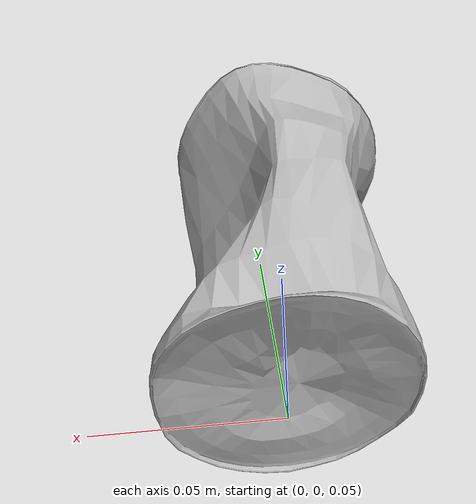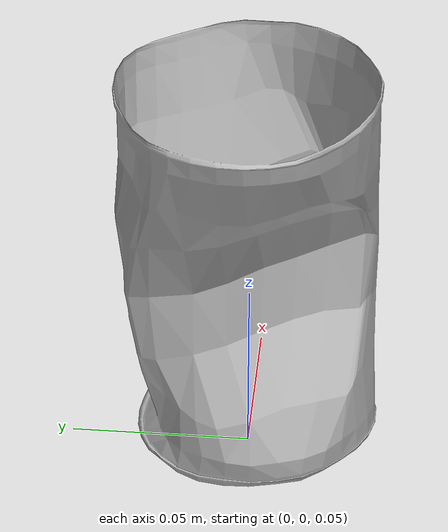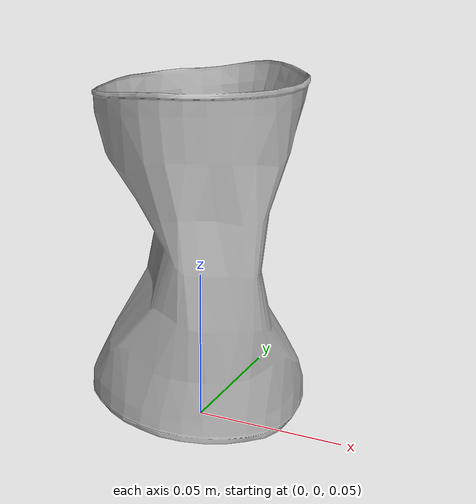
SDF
<?xml version="1.0"?>
<sdf version="1.6">
  <model name="trash_food_can_01">
    <static>true</static>
    <pose>0 0 0.0547 0 0 0</pose>
    <link name="link">
      <visual name="visual">
        <cast_shadows>false</cast_shadows>
        <geometry>
          <mesh>
            <uri>model://trash_food_can_01/meshes/trash_food_can_01.dae</uri>
            <scale>1.0000 1.0000 1.0000</scale>
          </mesh>
        </geometry>
      </visual>
    </link>
  </model>
</sdf>
